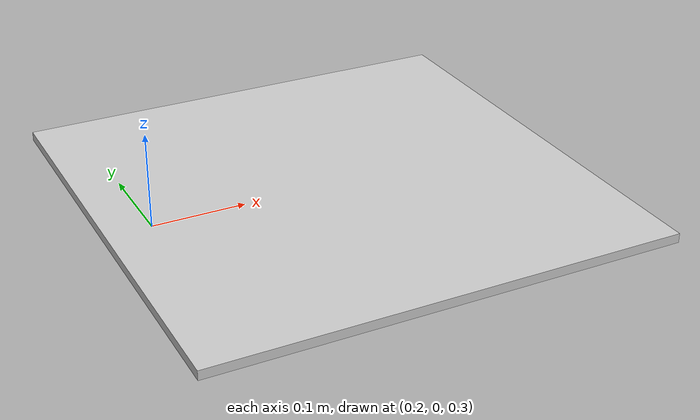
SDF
<?xml version="1.0" ?>
<sdf version="1.6">
  <model name="soft_block">
    <static>true</static>
    <pose>0.4 0 0.3 0 0 0</pose>
    <link name="link">
      <inertial>
        <mass>0.5</mass>
        <inertia>
          <ixx>0.0104167</ixx>
          <ixy>0</ixy>
          <ixz>0</ixz>
          <iyy>0.0104167</iyy>
          <iyz>0</iyz>
          <izz>0.0208333</izz>
        </inertia>
      </inertial>
      <collision name="collision">
        <geometry>
          <box>
            <size>0.5 0.5 0.01</size>
          </box>
        </geometry>
        <surface>
          <friction>
            <ode>
              <mu>0.4</mu>
              <mu2>0.4</mu2>
              <fdir1>1 0 0</fdir1>
              <slip1>0.0</slip1>
              <slip2>0.0</slip2>
            </ode>
          </friction>
          <contact>
            <ode>
              <min_depth>0.001</min_depth>
              <max_vel>0.1</max_vel>
            </ode>
          </contact>
        </surface>
      </collision>
      <visual name="visual">
        <geometry>
          <box>
            <size>0.5 0.5 0.01</size>
          </box>
        </geometry>
        <material>
          <ambient>0.8 0.8 0.8 1</ambient>
          <diffuse>0.8 0.8 0.8 1</diffuse>
          <specular>0.1 0.1 0.1 1</specular>
        </material>
      </visual>
    </link>
    <gazebo>
      <material>Gazebo/White</material>
      <mu1>0.4</mu1>
      <mu2>0.4</mu2>
      <kp>1000000</kp>
      <kd>100</kd>
      <minDepth>0.001</minDepth>
      <maxVel>0.1</maxVel>
      <selfCollide>0</selfCollide>
      <laserRetro>0</laserRetro>
    </gazebo>
  </model>
</sdf>
